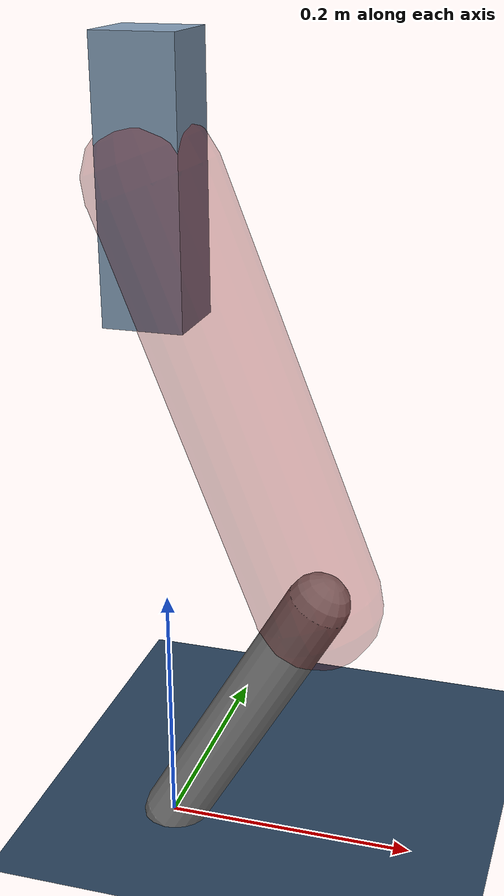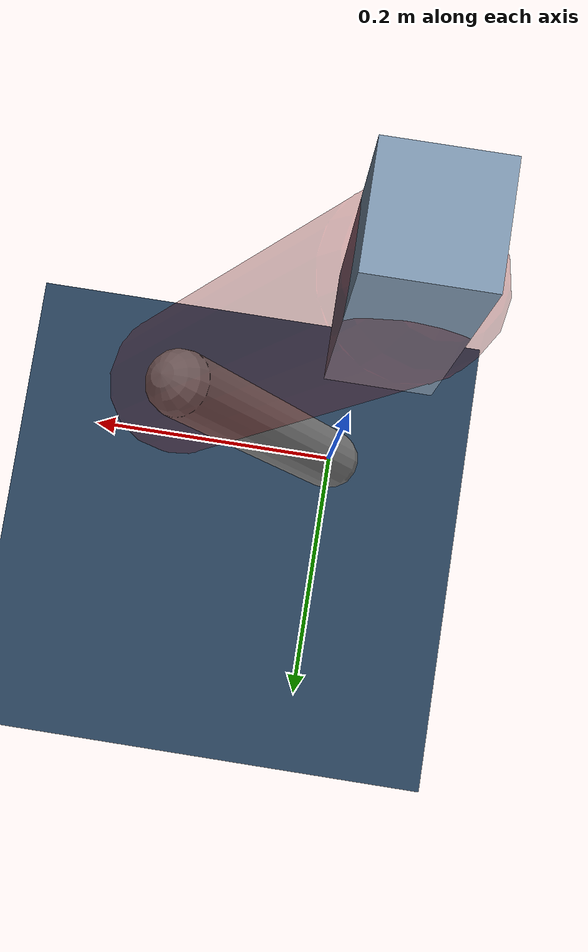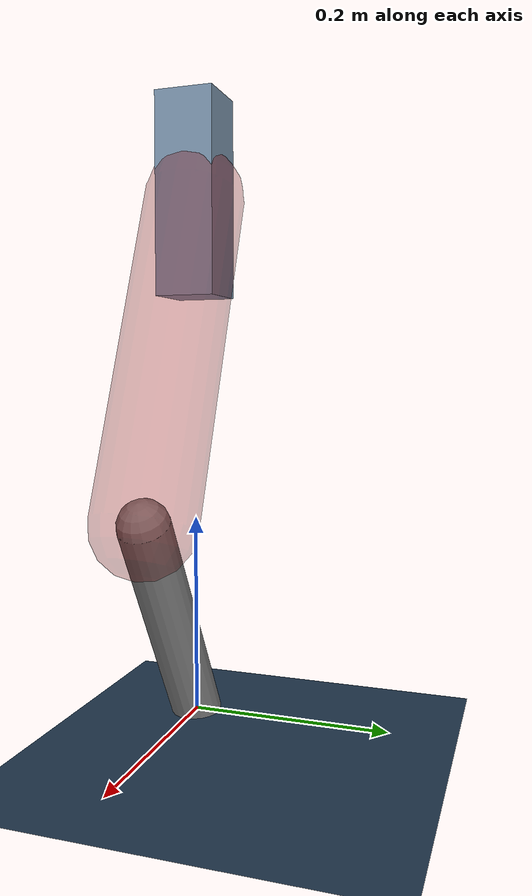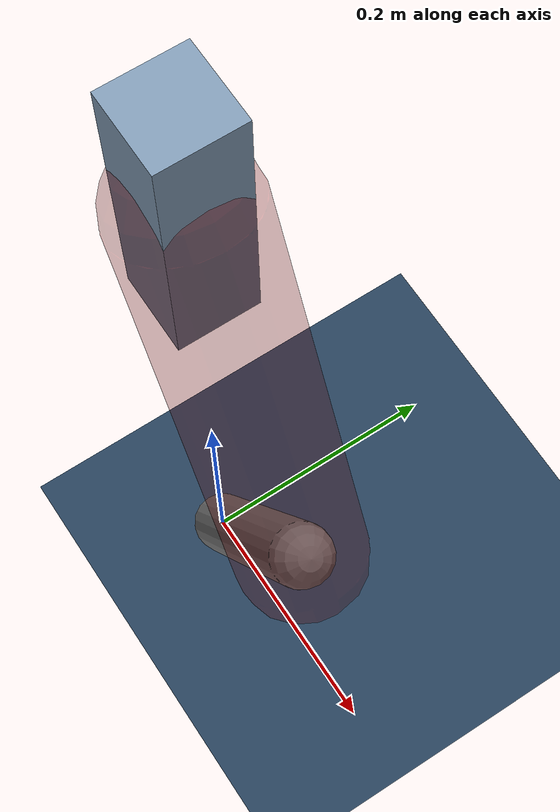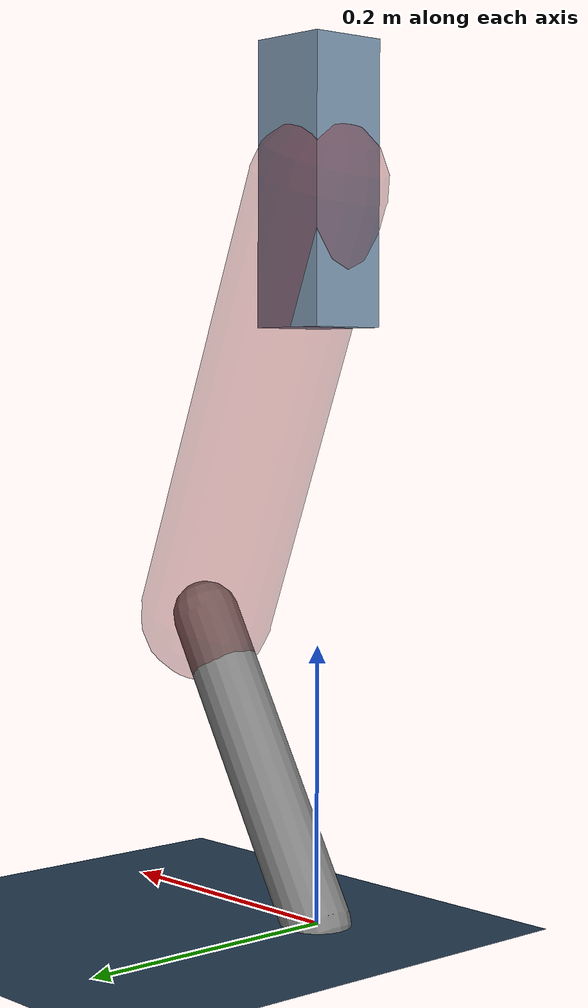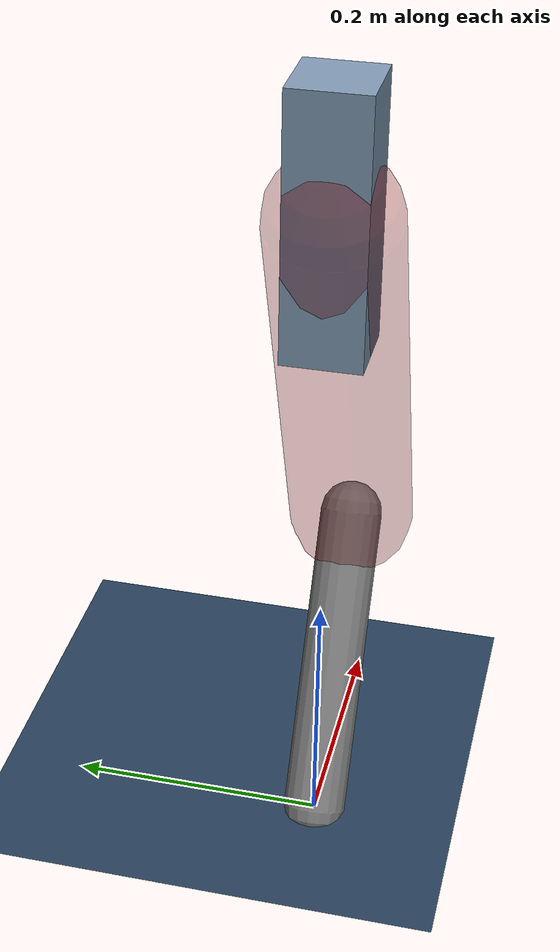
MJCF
<mujoco model="Hopper2D">
	<compiler inertiafromgeom="true" angle="radian" />
	<option timestep="0.001" integrator="implicit" cone="elliptic" solver="Newton" tolerance="1e-10" />

	<default>
		<geom contype="1" conaffinity="1" condim="3" friction="2 0.005 0.0001" solref="0.005 1" />
		<joint limited="true" damping="0.1" />
	</default>

	<asset>
		<texture name="skybox" type="skybox" builtin="gradient" rgb1=".4 .6 .8" rgb2="0 0 0" width="800" height="800" />
		<texture name="grid" type="2d" builtin="checker" rgb1=".1 .2 .3" rgb2=".2 .3 .4" width="300" height="300" mark="edge" markrgb=".2 .3 .4" />
		<material name="ground" texture="grid" texrepeat="1 1" texuniform="true" reflectance="0.1" />
		<material name="leg" rgba="0.5 0.6 0.7 1" />
	</asset>

	<worldbody>

		<geom name="floor" type="plane" size="5 5 0.25" material="ground" />

		<light directional="false" diffuse="0.8 0.8 0.8" specular="0.3 0.3 0.3" pos="0 0 2" dir="0 0 -1" />
		<light mode="targetbodycom" target="base" directional="false" diffuse="0.8 0.8 0.8" specular="0.3 0.3 0.3" pos="0 0 2" dir="0 0 -1" />

		<camera name="fixed" pos="0 -2 1" xyaxes="1 0 0 0 0 1" />
		<camera name="tracking" mode="trackcom" pos="0 -3 1" />

		<body name="root" pos="0 0 0.5251352056994387">
			<joint name="slide_x" type="slide" axis="1 0 0" range="-100 100" />
			<joint name="slide_z" type="slide" axis="0 0 1" range="0 10" />

			<body name="base" pos="0 0 0">
				<geom name="torso" type="box" size="0.03 0.03 0.1" mass="3.126" material="leg" />

				<body name="link1" pos="0 0 0" euler="0 1.198184132036717 0">
					<joint type="hinge" axis="0 -1 0" pos="0 0 0" name="hinge1" limited="true" range="-3.14 3.14" stiffness="0" damping="0.1" />
					<geom name="thigh" type="capsule" fromto="0 0 0 0.3357531058014929 0 0" size="0.05" rgba="0.5 0 0 0.3" mass="1.08680869624418" />

					<body name="link2" pos="0.3357531058014929 0 0" euler="0 0.8947590047832235 0">
						<joint type="hinge" axis="0 -1 0" pos="0 0 0" name="hinge2" limited="true" range="-3.14 3.14" stiffness="0" damping="0.1" />
						<geom name="shank" type="capsule" fromto="0 0 0 0.2450781783833588 0 0" size="0.025" mass="0.43846254270668705" />

					</body>
				</body>
			</body>
		</body>
	</worldbody>

	<actuator>
		<motor name="torque1" joint="hinge1" ctrlrange="-85.27933075026974 85.27933075026974" ctrllimited="true" gear="1" />
		<motor name="torque2" joint="hinge2" ctrlrange="-78.46507516253862 78.46507516253862" ctrllimited="true" gear="1" />
	</actuator>
</mujoco>
